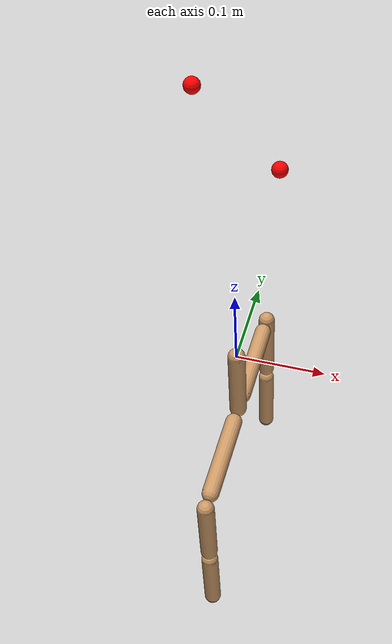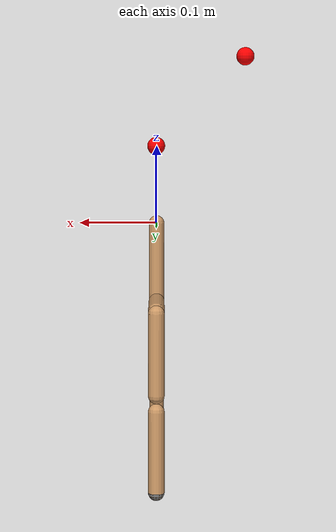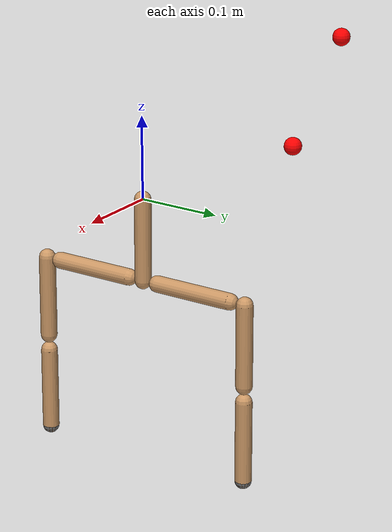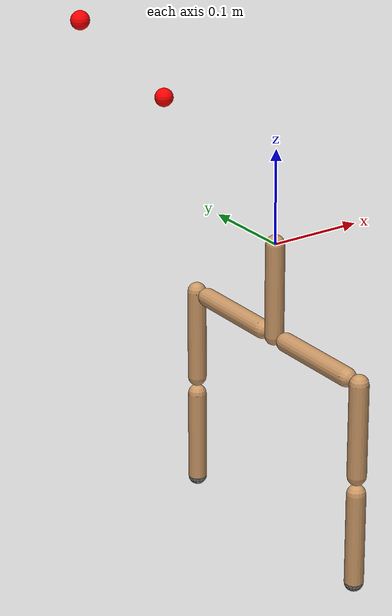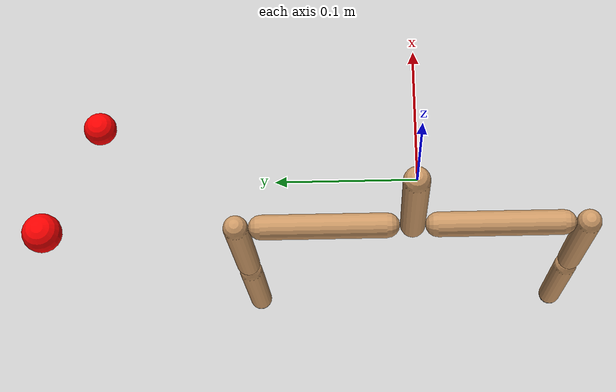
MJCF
<mujoco model="y">
  <default>
    <geom rgba=".8 .6 .4 1"  solref="0.02 1"/>
  </default>
  <option gravity="0 0 0"/>

  <asset>
    <texture type="skybox" builtin="gradient" rgb1="1 1 1" rgb2=".6 .8 1" width="256" height="256"/>
  </asset>

  <worldbody>
    <light pos="0 1 1" dir="0 -1 -1" diffuse="1 1 1"/>
    <body pos="0 0 0">
      <joint type="hinge" name="joint0" axis="0 1 0" limited="false" range="-120 120"/>
      <geom type="capsule" size="0.01" fromto="0 0 0  0 0 -0.1"/>
      <body pos="0 0.02 -0.1">
        <joint type="hinge" name="joint1" axis="0 0 1" limited="true" range="-120 120"/>
        <geom type="capsule" size="0.01" fromto="0 0 0  0 0.1 0"/>
          <body pos="0 0.12 0">
          <joint type="hinge" name="joint2" axis="0 1 0" limited="true" range="-120 120"/>
          <geom type="capsule" size="0.01" fromto="0 0 0  0 0 -0.1"/>
          <body pos="0 0 -0.12">
            <joint type="hinge" name="jnt_end0" axis="1 0 0" limited="true" range="-120 120"/>
            <geom type="capsule" size="0.01" fromto="0 0 0  0 0 -0.1"/>
            <body pos="0 0 -0.1"><site name="end0" type="sphere" size="0.01"/></body>
          </body>
        </body>
      </body>
      <body pos="0 -0.02 -0.1">
      <joint type="hinge" name="joint4" axis="1 0 0" limited="true" range="-120 120"/>
      <geom type="capsule" size="0.01" fromto="0 0 0  0 -0.1 0"/>
        <body pos="0 -0.12 0">
        <joint type="hinge" name="joint5" axis="0 1 0" limited="true" range="-120 120"/>
        <geom type="capsule" size="0.01" fromto="0 0 0  0 0 -0.1"/>
          <body pos="0 0 -0.12">
          <joint type="hinge" name="jnt_end1" axis="1 0 0" limited="true" range="-120 120"/>
          <geom type="capsule" size="0.01" fromto="0 0 0  0 0 -0.1"/>
          <body pos="0 0 -0.1"><site name="end1" type="sphere" size="0.01"/></body>
        </body>
      </body>
      </body>
    </body>

  </worldbody>

  <worldbody>
    <body pos="-0.1 0.2 0.2">
      <joint type="free" name="t0"/>
      <geom type="sphere" size="0.01" rgba="1 0 0 1" name="target0" contype="0" conaffinity="2"/>
    </body>
  </worldbody>

  <worldbody>
    <body pos="0.0 0.2 0.1">
      <joint type="free" name="t1"/>
      <geom type="sphere" size="0.01" rgba="1 0 0 1" name="target1" contype="0" conaffinity="2"/>
    </body>
  </worldbody>

  <actuator>
    <motor name="joint0act" joint="joint0"/>
    <motor name="joint1act" joint="joint1"/>
    <motor name="joint2act" joint="joint2"/>
    <motor name="jnt_end0act" joint="jnt_end0"/>
    <motor name="joint4act" joint="joint4"/>
    <motor name="joint5act" joint="joint5"/>
    <motor name="jnt_end1act" joint="jnt_end1"/>
    <velocity name="t0v" joint="t0" gear="1 0 0 0 0 0"/>
    <velocity name="t1v" joint="t1"/>
  </actuator>

</mujoco>
